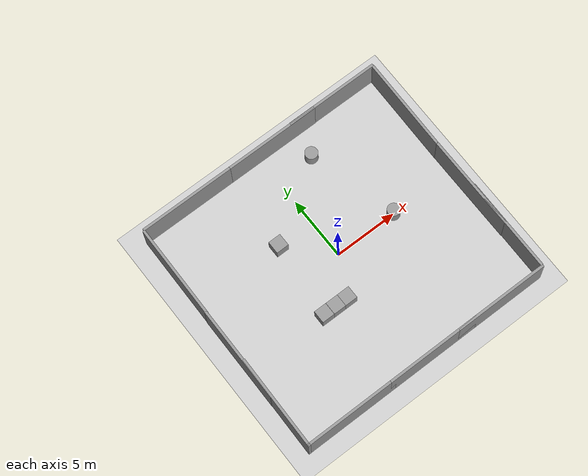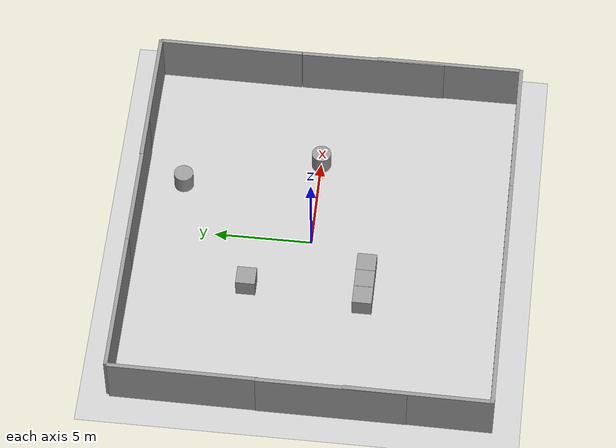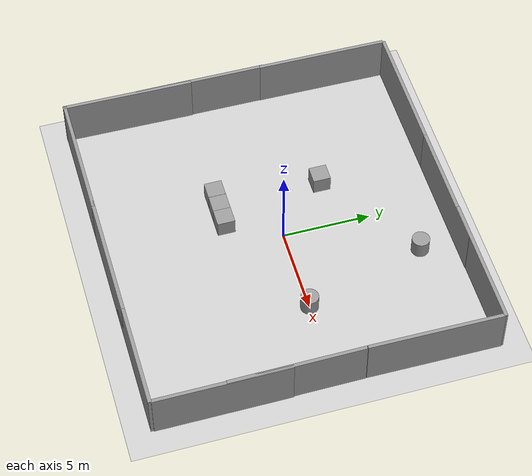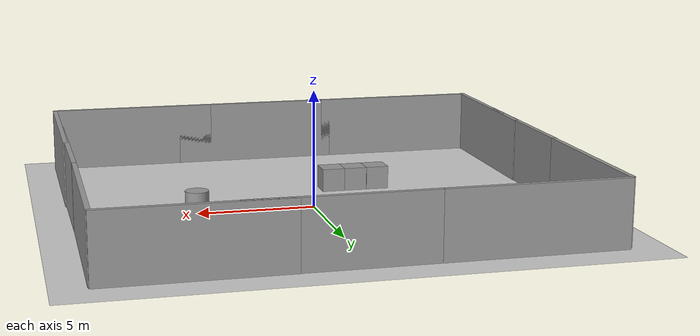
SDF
<sdf version="1.4">
 <world name="default">
  <light name="sun" type="directional">
   <pose>0 0 10 0 -0 0</pose>
   <diffuse>0.8 0.8 0.8 1</diffuse>
   <specular>0.2 0.2 0.2 1</specular>
   <attenuation>
    <range>1000</range>
    <constant>0.9</constant>
    <linear>0.01</linear>
    <quadratic>0.001</quadratic>
   </attenuation>
   <direction>-0.5 0.1 -0.9</direction>
  </light>
  <model name="ground_plane">
   <static>1</static>
   <link name="link">
    <collision name="collision">
     <geometry><plane><normal>0 0 1</normal><size>100 100</size></plane></geometry>
     <surface><friction><ode><mu>100</mu><mu2>50</mu2></ode></friction></surface>
    </collision>
    <visual name="visual">
     <cast_shadows>0</cast_shadows>
     <geometry><plane><normal>0 0 1</normal><size>100 100</size></plane></geometry>
     <material>
      <script><uri>file://media/materials/scripts/gazebo.material</uri><name>Gazebo/Grey</name></script>
     </material>
    </visual>
    <velocity_decay><linear>0</linear><angular>0</angular></velocity_decay>
   </link>
  </model>
  <physics type="ode">
   <max_step_size>0.01</max_step_size>
   <real_time_factor>4</real_time_factor>
   <real_time_update_rate>400</real_time_update_rate>
   <gravity>0 0 -9.8</gravity>
  </physics>
  <scene><ambient>0.4 0.4 0.4 1</ambient><background>0.7 0.7 0.7 1</background><shadows>1</shadows></scene>
  <spherical_coordinates>
   <surface_model>EARTH_WGS84</surface_model>
   <latitude_deg>0</latitude_deg>
   <longitude_deg>0</longitude_deg>
   <elevation>0</elevation>
   <heading_deg>0</heading_deg>
  </spherical_coordinates>
  <model name="grey_wall">
   <static>1</static>
   <link name="link">
    <pose>0 0 1.4 0 -0 0</pose>
    <collision name="collision"><geometry><box><size>7.5 0.2 2.8</size></box></geometry></collision>
    <visual name="visual">
     <cast_shadows>0</cast_shadows>
     <geometry><box><size>7.5 0.2 2.8</size></box></geometry>
     <material>
      <script>
       <uri>model://grey_wall/materials/scripts</uri>
       <uri>model://grey_wall/materials/textures</uri>
       <name>vrc/grey_wall</name>
      </script>
     </material>
    </visual>
    <velocity_decay><linear>0</linear><angular>0</angular></velocity_decay>
   </link>
   <pose>-6.37486 9.06322 0 0 -0 0</pose>
  </model>
  <model name="grey_wall_0">
   <static>1</static>
   <link name="link">
    <pose>0 0 1.4 0 -0 0</pose>
    <collision name="collision"><geometry><box><size>7.5 0.2 2.8</size></box></geometry></collision>
    <visual name="visual">
     <cast_shadows>0</cast_shadows>
     <geometry><box><size>7.5 0.2 2.8</size></box></geometry>
     <material>
      <script>
       <uri>model://grey_wall/materials/scripts</uri>
       <uri>model://grey_wall/materials/textures</uri>
       <name>vrc/grey_wall</name>
      </script>
     </material>
    </visual>
    <velocity_decay><linear>0</linear><angular>0</angular></velocity_decay>
   </link>
   <pose>1.12463 9.06218 0 0 -0 0</pose>
  </model>
  <model name="grey_wall_1">
   <static>1</static>
   <link name="link">
    <pose>0 0 1.4 0 -0 0</pose>
    <collision name="collision"><geometry><box><size>7.5 0.2 2.8</size></box></geometry></collision>
    <visual name="visual">
     <cast_shadows>0</cast_shadows>
     <geometry><box><size>7.5 0.2 2.8</size></box></geometry>
     <material>
      <script>
       <uri>model://grey_wall/materials/scripts</uri>
       <uri>model://grey_wall/materials/textures</uri>
       <name>vrc/grey_wall</name>
      </script>
     </material>
    </visual>
    <velocity_decay><linear>0</linear><angular>0</angular></velocity_decay>
   </link>
   <pose>6.47505 9.08721 0 0 -0 0</pose>
  </model>
  <model name="grey_wall_2">
   <static>1</static>
   <link name="link">
    <pose>0 0 1.4 0 -0 0</pose>
    <collision name="collision"><geometry><box><size>7.5 0.2 2.8</size></box></geometry></collision>
    <visual name="visual">
     <cast_shadows>0</cast_shadows>
     <geometry><box><size>7.5 0.2 2.8</size></box></geometry>
     <material>
      <script>
       <uri>model://grey_wall/materials/scripts</uri>
       <uri>model://grey_wall/materials/textures</uri>
       <name>vrc/grey_wall</name>
      </script>
     </material>
    </visual>
    <velocity_decay><linear>0</linear><angular>0</angular></velocity_decay>
   </link>
   <pose>-6.57172 -10 0 0 -0 0</pose>
  </model>
  <model name="grey_wall_3">
   <static>1</static>
   <link name="link">
    <pose>0 0 1.4 0 -0 0</pose>
    <collision name="collision"><geometry><box><size>7.5 0.2 2.8</size></box></geometry></collision>
    <visual name="visual">
     <cast_shadows>0</cast_shadows>
     <geometry><box><size>7.5 0.2 2.8</size></box></geometry>
     <material>
      <script>
       <uri>model://grey_wall/materials/scripts</uri>
       <uri>model://grey_wall/materials/textures</uri>
       <name>vrc/grey_wall</name>
      </script>
     </material>
    </visual>
    <velocity_decay><linear>0</linear><angular>0</angular></velocity_decay>
   </link>
   <pose>0.502464 -10 0 0 -0 0</pose>
  </model>
  <model name="grey_wall_4">
   <static>1</static>
   <link name="link">
    <pose>0 0 1.4 0 -0 0</pose>
    <collision name="collision"><geometry><box><size>7.5 0.2 2.8</size></box></geometry></collision>
    <visual name="visual">
     <cast_shadows>0</cast_shadows>
     <geometry><box><size>7.5 0.2 2.8</size></box></geometry>
     <material>
      <script>
       <uri>model://grey_wall/materials/scripts</uri>
       <uri>model://grey_wall/materials/textures</uri>
       <name>vrc/grey_wall</name>
      </script>
     </material>
    </visual>
    <velocity_decay><linear>0</linear><angular>0</angular></velocity_decay>
   </link>
   <pose>6.46119 -10 0 0 -0 0</pose>
  </model>
  <model name="grey_wall_5">
   <static>1</static>
   <link name="link">
    <pose>0 0 1.4 0 -0 0</pose>
    <collision name="collision"><geometry><box><size>7.5 0.2 2.8</size></box></geometry></collision>
    <visual name="visual">
     <cast_shadows>0</cast_shadows>
     <geometry><box><size>7.5 0.2 2.8</size></box></geometry>
     <material>
      <script>
       <uri>model://grey_wall/materials/scripts</uri>
       <uri>model://grey_wall/materials/textures</uri>
       <name>vrc/grey_wall</name>
      </script>
     </material>
    </visual>
    <velocity_decay><linear>0</linear><angular>0</angular></velocity_decay>
   </link>
   <pose>10.1266 5.31585 0 0 0 -1.58058</pose>
  </model>
  <model name="grey_wall_6">
   <static>1</static>
   <link name="link">
    <pose>0 0 1.4 0 -0 0</pose>
    <collision name="collision"><geometry><box><size>7.5 0.2 2.8</size></box></geometry></collision>
    <visual name="visual">
     <cast_shadows>0</cast_shadows>
     <geometry><box><size>7.5 0.2 2.8</size></box></geometry>
     <material>
      <script>
       <uri>model://grey_wall/materials/scripts</uri>
       <uri>model://grey_wall/materials/textures</uri>
       <name>vrc/grey_wall</name>
      </script>
     </material>
    </visual>
    <velocity_decay><linear>0</linear><angular>0</angular></velocity_decay>
   </link>
   <pose>10.1134 -2.21796 0 0 0 -1.566</pose>
  </model>
  <model name="grey_wall_7">
   <static>1</static>
   <link name="link">
    <pose>0 0 1.4 0 -0 0</pose>
    <collision name="collision"><geometry><box><size>7.5 0.2 2.8</size></box></geometry></collision>
    <visual name="visual">
     <cast_shadows>0</cast_shadows>
     <geometry><box><size>7.5 0.2 2.8</size></box></geometry>
     <material>
      <script>
       <uri>model://grey_wall/materials/scripts</uri>
       <uri>model://grey_wall/materials/textures</uri>
       <name>vrc/grey_wall</name>
      </script>
     </material>
    </visual>
    <velocity_decay><linear>0</linear><angular>0</angular></velocity_decay>
   </link>
   <pose>10.161 -6.18012 0 0 -0 1.5699</pose>
  </model>
  <model name="grey_wall_8">
   <static>1</static>
   <link name="link">
    <pose>0 0 1.4 0 -0 0</pose>
    <collision name="collision"><geometry><box><size>7.5 0.2 2.8</size></box></geometry></collision>
    <visual name="visual">
     <cast_shadows>0</cast_shadows>
     <geometry><box><size>7.5 0.2 2.8</size></box></geometry>
     <material>
      <script>
       <uri>model://grey_wall/materials/scripts</uri>
       <uri>model://grey_wall/materials/textures</uri>
       <name>vrc/grey_wall</name>
      </script>
     </material>
    </visual>
    <velocity_decay><linear>0</linear><angular>0</angular></velocity_decay>
   </link>
   <pose>-10.1642 5.26629 0 0 0 -1.57839</pose>
  </model>
  <model name="grey_wall_9">
   <static>1</static>
   <link name="link">
    <pose>0 0 1.4 0 -0 0</pose>
    <collision name="collision"><geometry><box><size>7.5 0.2 2.8</size></box></geometry></collision>
    <visual name="visual">
     <cast_shadows>0</cast_shadows>
     <geometry><box><size>7.5 0.2 2.8</size></box></geometry>
     <material>
      <script>
       <uri>model://grey_wall/materials/scripts</uri>
       <uri>model://grey_wall/materials/textures</uri>
       <name>vrc/grey_wall</name>
      </script>
     </material>
    </visual>
    <velocity_decay><linear>0</linear><angular>0</angular></velocity_decay>
   </link>
   <pose>-10.2248 -2.07732 0 0 0 -1.57362</pose>
  </model>
  <model name="grey_wall_10">
   <static>1</static>
   <link name="link">
    <pose>0 0 1.4 0 -0 0</pose>
    <collision name="collision"><geometry><box><size>7.5 0.2 2.8</size></box></geometry></collision>
    <visual name="visual">
     <cast_shadows>0</cast_shadows>
     <geometry><box><size>7.5 0.2 2.8</size></box></geometry>
     <material>
      <script>
       <uri>model://grey_wall/materials/scripts</uri>
       <uri>model://grey_wall/materials/textures</uri>
       <name>vrc/grey_wall</name>
      </script>
     </material>
    </visual>
    <velocity_decay><linear>0</linear><angular>0</angular></velocity_decay>
   </link>
   <pose>-10.2268 -6.36026 -0 0 0 -1.58184</pose>
  </model>
  <model name="unit_box_1">
   <pose>-3 3 0.5 0 -0 0</pose>
   <link name="link">
    <inertial>
     <mass>1</mass>
     <inertia><ixx>1</ixx><ixy>0</ixy><ixz>0</ixz><iyy>1</iyy><iyz>0</iyz><izz>1</izz></inertia>
    </inertial>
    <collision name="collision"><geometry><box><size>1 1 1</size></box></geometry></collision>
    <visual name="visual">
     <geometry><box><size>1 1 1</size></box></geometry>
     <material>
      <script><uri>file://media/materials/scripts/gazebo.material</uri><name>Gazebo/Grey</name></script>
     </material>
    </visual>
    <velocity_decay><linear>0</linear><angular>0</angular></velocity_decay>
   </link>
   <static>0</static>
  </model>
  <model name="unit_box_2">
   <pose>-2.54291 -3 0.5 -0 -0 -0</pose>
   <link name="link">
    <inertial>
     <mass>1</mass>
     <inertia><ixx>1</ixx><ixy>0</ixy><ixz>0</ixz><iyy>1</iyy><iyz>0</iyz><izz>1</izz></inertia>
    </inertial>
    <collision name="collision"><geometry><box><size>1 1 1</size></box></geometry></collision>
    <visual name="visual">
     <geometry><box><size>1 1 1</size></box></geometry>
     <material>
      <script><uri>file://media/materials/scripts/gazebo.material</uri><name>Gazebo/Grey</name></script>
     </material>
    </visual>
    <velocity_decay><linear>0</linear><angular>0</angular></velocity_decay>
   </link>
   <static>0</static>
  </model>
  <model name="unit_box_3">
   <pose>-3.54761 -3 0.5 0 -0 0</pose>
   <link name="link">
    <inertial>
     <mass>1</mass>
     <inertia><ixx>1</ixx><ixy>0</ixy><ixz>0</ixz><iyy>1</iyy><iyz>0</iyz><izz>1</izz></inertia>
    </inertial>
    <collision name="collision"><geometry><box><size>1 1 1</size></box></geometry></collision>
    <visual name="visual">
     <geometry><box><size>1 1 1</size></box></geometry>
     <material>
      <script><uri>file://media/materials/scripts/gazebo.material</uri><name>Gazebo/Grey</name></script>
     </material>
    </visual>
    <velocity_decay><linear>0</linear><angular>0</angular></velocity_decay>
   </link>
   <static>0</static>
  </model>
  <model name="unit_box_4">
   <pose>-1.54291 -3 0.5 0 -0 -1e-06</pose>
   <link name="link">
    <inertial>
     <mass>1</mass>
     <inertia><ixx>1</ixx><ixy>0</ixy><ixz>0</ixz><iyy>1</iyy><iyz>0</iyz><izz>1</izz></inertia>
    </inertial>
    <collision name="collision"><geometry><box><size>1 1 1</size></box></geometry></collision>
    <visual name="visual">
     <geometry><box><size>1 1 1</size></box></geometry>
     <material>
      <script><uri>file://media/materials/scripts/gazebo.material</uri><name>Gazebo/Grey</name></script>
     </material>
    </visual>
    <velocity_decay><linear>0</linear><angular>0</angular></velocity_decay>
   </link>
   <static>0</static>
  </model>
  <model name="unit_cylinder_1">
   <pose>5 -0 0.499998 0 -0 0</pose>
   <link name="link">
    <inertial>
     <mass>1</mass>
     <inertia><ixx>1</ixx><ixy>0</ixy><ixz>0</ixz><iyy>1</iyy><iyz>0</iyz><izz>1</izz></inertia>
    </inertial>
    <collision name="collision">
     <geometry><cylinder><radius>0.5</radius><length>1</length></cylinder></geometry>
    </collision>
    <visual name="visual">
     <geometry><cylinder><radius>0.5</radius><length>1</length></cylinder></geometry>
     <material>
      <script><uri>file://media/materials/scripts/gazebo.material</uri><name>Gazebo/Grey</name></script>
     </material>
    </visual>
    <velocity_decay><linear>0</linear><angular>0</angular></velocity_decay>
   </link>
   <static>0</static>
  </model>
  <model name="unit_cylinder_2">
   <pose>3 7 0.499992 0 -0 0</pose>
   <link name="link">
    <inertial>
     <mass>1</mass>
     <inertia><ixx>1</ixx><ixy>0</ixy><ixz>0</ixz><iyy>1</iyy><iyz>0</iyz><izz>1</izz></inertia>
    </inertial>
    <collision name="collision">
     <geometry><cylinder><radius>0.5</radius><length>1</length></cylinder></geometry>
    </collision>
    <visual name="visual">
     <geometry><cylinder><radius>0.5</radius><length>1</length></cylinder></geometry>
     <material>
      <script><uri>file://media/materials/scripts/gazebo.material</uri><name>Gazebo/Grey</name></script>
     </material>
    </visual>
    <velocity_decay><linear>0</linear><angular>0</angular></velocity_decay>
   </link>
   <static>0</static>
  </model>
 </world>
</sdf>
